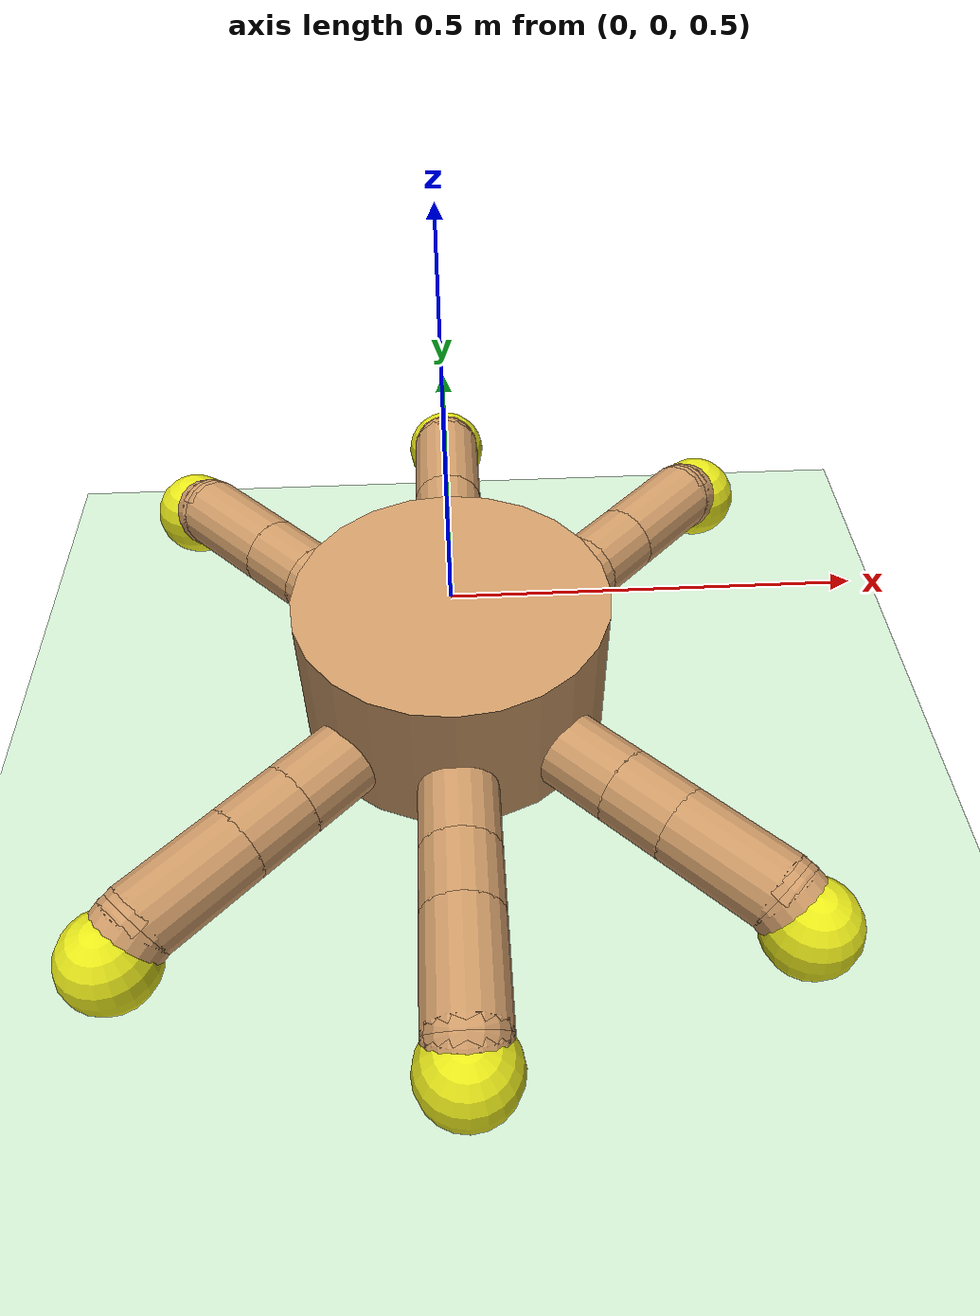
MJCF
<mujoco model="ant">
  <compiler angle="degree" coordinate="local" inertiafromgeom="true"/>
  <option integrator="RK4" timestep="0.01"/>
  <custom>
    <numeric data="0.0 0.0 0.55 1.0 0.0 0.0 0.0 0.0 1.0 0.0 -1.0 0.0 -1.0 0.0 1.0" name="init_qpos"/>
  </custom>
  <default>
    <joint armature="1" damping="1" limited="true"/>
    <geom conaffinity="0" condim="3" density="5.0" friction="1 0.5 0.5" margin="0.01" rgba="0.8 0.6 0.4 1"/>
  </default>
  <asset>
    <texture builtin="gradient" height="100" rgb1="1 1 1" rgb2="0 0 0" type="skybox" width="100"/>
    <texture builtin="flat" height="1278" mark="cross" markrgb="1 1 1" name="texgeom" random="0.01" rgb1="0.8 0.6 0.4" rgb2="0.8 0.6 0.4" type="cube" width="127"/>
    <texture builtin="checker" height="100" name="texplane" rgb1="0 0 0" rgb2="0.8 0.8 0.8" type="2d" width="100"/>
    <material name="MatPlane" reflectance="0.5" shininess="1" specular="1" texrepeat="60 60" texture="texplane"/>
    <material name="geom" texture="texgeom" texuniform="true"/>
  </asset>
  <worldbody>
    <light cutoff="100" diffuse="1 1 1" dir="-0 0 -1.3" directional="true" exponent="1" pos="0 0 1.3" specular=".1 .1 .1"/>
    <geom conaffinity="1" condim="3" material="MatPlane" name="floor" pos="0 0 0" rgba="0.8 0.9 0.8 1" size="40 40 40" type="plane"/>
    <body name="torso" pos="0 0 0.4">
      <camera name="track" mode="trackcom" pos="0 -3 0.3" xyaxes="1 0 0 0 0 1"/>
      <geom name="torso_geom" pos="0 0 0" size="0.2 0.1" type="cylinder"/>
      <joint armature="0" damping="0" limited="false" margin="0.01" name="root" pos="0 0 0" type="free"/>
      <site name="sensor_site" pos="0 0 0" size="0.06" type="sphere" rgba=".9 .9 .1 1"/>
      <body name="front_left_leg" pos="0 0 0">
        <geom fromto="0.0 0.0 -0.04 0.2 0.2 -0.04" name="aux_1_geom" size="0.05" type="capsule"/>
        <body name="aux_1" pos="0.2 0.2 0">
          <joint axis="0 0 1" name="hip_1" pos="0.0 0.0 -0.04" range="-45 45" type="hinge"/>
          <geom fromto="0.0 0.0 -0.04 0.06 0.06 -0.04" name="left_leg_geom" size="0.05" type="capsule"/>
          <body pos="0.06 0.06 0">
            <joint axis="1 -1 0" name="ankle_1" pos="0.0 0.0 -0.04" range="-80 -30" type="hinge"/>
            <geom fromto="0.0 0.0 -0.04 0.1 0.1 -0.04" name="left_ankle_geom" size="0.05" type="capsule"/>
            <geom fromto="0.1 0.1 -0.04 0.13 0.13 -0.065" name="left_foot_geom" size="0.05" type="capsule"/>
            <site name="fl_foot" pos="0.13 0.13 -0.065" size="0.06" type="sphere" rgba=".9 .9 .1 1"/>
          </body>
        </body>
      </body>
      <body name="front_right_leg" pos="0 0 0">
        <geom fromto="0.0 0.0 -0.04 0.2 -0.2 -0.04" name="aux_2_geom" size="0.05" type="capsule"/>
        <body name="aux_2" pos="0.2 -0.2 0">
          <joint axis="0 0 1" name="hip_2" pos="0.0 0.0 -0.04" range="-45 45" type="hinge"/>
          <geom fromto="0.0 0.0 -0.04 0.06 -0.06 -0.04" name="right_leg_geom" size="0.05" type="capsule"/>
          <body pos="0.06 -0.06 0">
            <joint axis="1 1 0" name="ankle_2" pos="0.0 0.0 -0.04" range="30 80" type="hinge"/>
            <geom fromto="0.0 0.0 -0.04 0.1 -0.1 -0.04" name="right_ankle_geom" size="0.05" type="capsule"/>
            <geom fromto="0.1 -0.1 -0.04 0.13 -0.13 -0.065" name="right_foot_geom" size="0.05" type="capsule"/>
            <site name="fr_foot" pos="0.13 -0.13 -0.065" size="0.06" type="sphere" rgba=".9 .9 .1 1"/>
          </body>
        </body>
      </body>
      <body name="mid_left_leg" pos="0 0 0">
        <geom fromto="0.0 0.0 -0.04 0 0.2828 -0.04" name="aux_3_geom" size="0.05" type="capsule"/>
        <body name="aux_3" pos="0 0.2828 0">
          <joint axis="0 0 1" name="hip_3" pos="0.0 0.0 -0.04" range="-30 30" type="hinge"/>
          <geom fromto="0.0 0.0 -0.04 0 0.0849 -0.04" name="mid_left_leg_geom" size="0.05" type="capsule"/>
          <body pos="0 0.0849 0">
            <joint axis="1 0 0" name="ankle_3" pos="0.0 0.0 -0.04" range="-80 -30" type="hinge"/>
            <geom fromto="0.0 0.0 -0.04 0 0.1414 -0.04" name="third_ankle_geom" size="0.05" type="capsule"/>
            <geom fromto="0 0.1414 -0.04 0 0.1696 -0.065" name="third_foot_geom" size="0.05" type="capsule"/>
            <site name="ml_foot" pos="0 0.1696 -0.065" size="0.06" type="sphere" rgba=".9 .9 .1 1"/>
          </body>
        </body>
      </body>
      <body name="mid_right_leg" pos="0 0 0">
        <geom fromto="0.0 0.0 -0.04  0 -0.2828 -0.04" name="aux_4_geom" size="0.05" type="capsule"/>
        <body name="aux_4" pos=" 0 -0.2828 0">
          <joint axis="0 0 1" name="hip_4" pos="0.0 0.0 -0.04" range="-30 30" type="hinge"/>
          <geom fromto="0.0 0.0 -0.04 0 -0.0849 -0.04" name="mid_right_leg_geom" size="0.05" type="capsule"/>
          <body pos="0 -0.0849 0">
            <joint axis="1 0 0" name="ankle_4" pos="0.0 0.0 -0.04" range="30 80" type="hinge"/>
            <geom fromto="0.0 0.0 -0.04 0 -0.1414 -0.04" name="fourth_ankle_geom" size="0.05" type="capsule"/>
            <geom fromto="0 -0.1414 -0.04 0 -0.1696 -0.065" name="fourth_foot_geom" size="0.05" type="capsule"/>
            <site name="mr_foot" pos="0 -0.1696 -0.065" size="0.06" type="sphere" rgba=".9 .9 .1 1"/>
          </body>
        </body>
      </body>
      <body name="back_left_leg" pos="0 0 0">
        <geom fromto="0.0 0.0 -0.04 -0.2 0.2 -0.04" name="aux_5_geom" size="0.05" type="capsule"/>
        <body name="aux_5" pos="-0.2 0.2 0">
          <joint axis="0 0 1" name="hip_5" pos="0.0 0.0 -0.04" range="-45 45" type="hinge"/>
          <geom fromto="0.0 0.0 -0.04 -0.06 0.06 -0.04" name="back_left_leg_geom" size="0.05" type="capsule"/>
          <body pos="-0.06 0.06 0">
            <joint axis="1 1 0" name="ankle_5" pos="0.0 0.0 -0.04" range="-80 -30" type="hinge"/>
            <geom fromto="0.0 0.0 -0.04 -0.1 0.1 -0.04" name="fifth_ankle_geom" size="0.05" type="capsule"/>
            <geom fromto="-0.1 0.1 -0.04 -0.13 0.13 -0.065" name="fifth_foot_geom" size="0.05" type="capsule"/>
            <site name="bl_foot" pos="-0.13 0.13 -0.065" size="0.06" type="sphere" rgba=".9 .9 .1 1"/>
          </body>
        </body>
      </body>
      <body name="back_right_leg" pos="0 0 0">
        <geom fromto="0.0 0.0 -0.04 -0.2 -0.2 -0.04" name="aux_6_geom" size="0.05" type="capsule"/>
        <body name="aux_6" pos="-0.2 -0.2 0">
          <joint axis="0 0 1" name="hip_6" pos="0.0 0.0 -0.04" range="-45 45" type="hinge"/>
          <geom fromto="0.0 0.0 -0.04 -0.06 -0.06 -0.04" name="back_right_leg_geom" size="0.05" type="capsule"/>
          <body pos="-0.06 -0.06 0">
            <joint axis="1 -1 0" name="ankle_6" pos="0.0 0.0 -0.04" range="30 80" type="hinge"/>
            <geom fromto="0.0 0.0 -0.04 -0.1 -0.1 -0.04" name="sixth_ankle_geom" size="0.05" type="capsule"/>
            <geom fromto="-0.1 -0.1 -0.04 -0.13 -0.13 -0.065" name="sixth_foot_geom" size="0.05" type="capsule"/>
            <site name="br_foot" pos="-0.13 -0.13 -0.065" size="0.06" type="sphere" rgba=".9 .9 .1 1"/>
          </body>
        </body>
      </body>
    </body>
  </worldbody>
  <actuator>
    <motor name="servo_1" ctrllimited="true" ctrlrange="-1.0 1.0" joint="hip_1" gear="50"/>
    <motor name="servo_2" ctrllimited="true" ctrlrange="-1.0 1.0" joint="ankle_1" gear="50"/>
    <motor name="servo_3" ctrllimited="true" ctrlrange="-1.0 1.0" joint="hip_2" gear="50"/>
    <motor name="servo_4" ctrllimited="true" ctrlrange="-1.0 1.0" joint="ankle_2" gear="50"/>
    <motor name="servo_5" ctrllimited="true" ctrlrange="-1.0 1.0" joint="hip_3" gear="50"/>
    <motor name="servo_6" ctrllimited="true" ctrlrange="-1.0 1.0" joint="ankle_3" gear="50"/>
    <motor name="servo_7" ctrllimited="true" ctrlrange="-1.0 1.0" joint="hip_4" gear="50"/>
    <motor name="servo_8" ctrllimited="true" ctrlrange="-1.0 1.0" joint="ankle_4" gear="50"/>
    <motor name="servo_9" ctrllimited="true" ctrlrange="-1.0 1.0" joint="hip_5" gear="50"/>
    <motor name="servo_10" ctrllimited="true" ctrlrange="-1.0 1.0" joint="ankle_5" gear="50"/>
    <motor name="servo_11" ctrllimited="true" ctrlrange="-1.0 1.0" joint="hip_6" gear="50"/>
    <motor name="servo_12" ctrllimited="true" ctrlrange="-1.0 1.0" joint="ankle_6" gear="50"/>
  </actuator>
  <sensor>
    <framepos name="pos" objtype="body" objname="torso" noise="0.05"/>
    <framequat name="quat" objtype="body" objname="torso" noise="0.05"/>
    <accelerometer name="lin_acc" site="sensor_site" noise="0.05"/>
    <gyro name="ang_vel" site="sensor_site" noise="0.05"/>

    <actuatorfrc name="frc_1" actuator="servo_1" noise="0.05"/>
    <actuatorfrc name="frc_2" actuator="servo_2" noise="0.05"/>
    <actuatorfrc name="frc_3" actuator="servo_3" noise="0.05"/>
    <actuatorfrc name="frc_4" actuator="servo_4" noise="0.05"/>
    <actuatorfrc name="frc_5" actuator="servo_5" noise="0.05"/>
    <actuatorfrc name="frc_6" actuator="servo_6" noise="0.05"/>
    <actuatorfrc name="frc_7" actuator="servo_7" noise="0.05"/>
    <actuatorfrc name="frc_8" actuator="servo_8" noise="0.05"/>
    <actuatorfrc name="frc_9" actuator="servo_5" noise="0.05"/>
    <actuatorfrc name="frc_10" actuator="servo_6" noise="0.05"/>
    <actuatorfrc name="frc_11" actuator="servo_7" noise="0.05"/>
    <actuatorfrc name="frc_12" actuator="servo_8" noise="0.05"/>

    <jointvel name="vel_1" joint="hip_1" noise="0.05"/>
    <jointvel name="vel_2" joint="ankle_1" noise="0.05"/>
    <jointvel name="vel_3" joint="hip_2" noise="0.05"/>
    <jointvel name="vel_4" joint="ankle_2" noise="0.05"/>
    <jointvel name="vel_5" joint="hip_3" noise="0.05"/>
    <jointvel name="vel_6" joint="ankle_3" noise="0.05"/>
    <jointvel name="vel_7" joint="hip_4" noise="0.05"/>
    <jointvel name="vel_8" joint="ankle_4" noise="0.05"/>
    <jointvel name="vel_9" joint="hip_5" noise="0.05"/>
    <jointvel name="vel_10" joint="ankle_5" noise="0.05"/>
    <jointvel name="vel_11" joint="hip_6" noise="0.05"/>
    <jointvel name="vel_12" joint="ankle_6" noise="0.05"/>

    <jointpos name="pos_1" joint="hip_1" noise="0.05"/>
    <jointpos name="pos_2" joint="ankle_1" noise="0.05"/>
    <jointpos name="pos_3" joint="hip_2" noise="0.05"/>
    <jointpos name="pos_4" joint="ankle_2" noise="0.05"/>
    <jointpos name="pos_5" joint="hip_3" noise="0.05"/>
    <jointpos name="pos_6" joint="ankle_3" noise="0.05"/>
    <jointpos name="pos_7" joint="hip_4" noise="0.05"/>
    <jointpos name="pos_8" joint="ankle_4" noise="0.05"/>
    <jointpos name="pos_9" joint="hip_5" noise="0.05"/>
    <jointpos name="pos_10" joint="ankle_5" noise="0.05"/>
    <jointpos name="pos_11" joint="hip_6" noise="0.05"/>
    <jointpos name="pos_12" joint="ankle_6" noise="0.05"/>

    <touch name="touch_1" site="fl_foot" noise="0.05"/>
    <touch name="touch_2" site="fr_foot" noise="0.05"/>
    <touch name="touch_3" site="bl_foot" noise="0.05"/>
    <touch name="touch_4" site="br_foot" noise="0.05"/>
    <touch name="touch_5" site="ml_foot" noise="0.05"/>
    <touch name="touch_6" site="mr_foot" noise="0.05"/>
  </sensor>
</mujoco>
